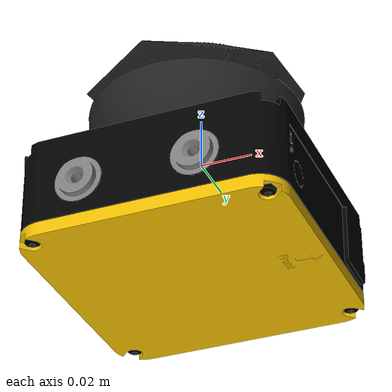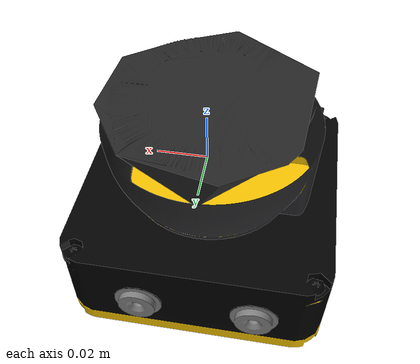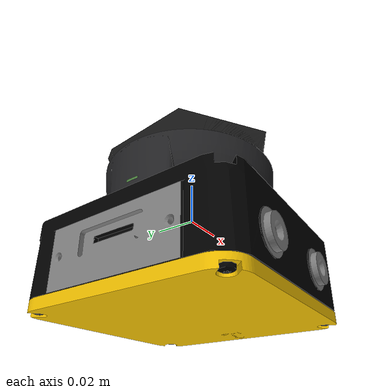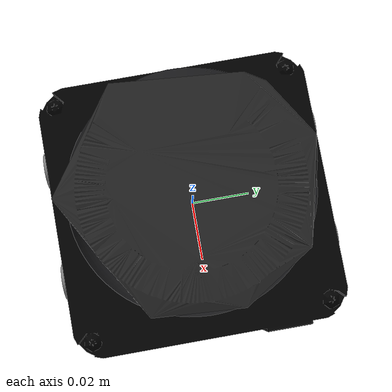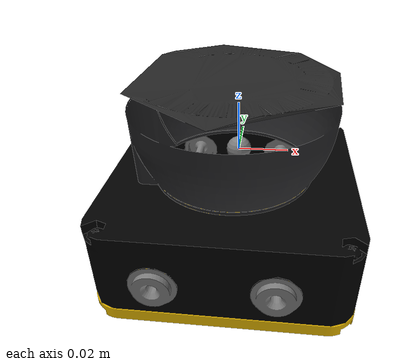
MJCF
<mujoco model="sick_nanoscan3">
  <compiler angle="radian" meshdir="meshes" autolimits="true"/>

  <asset>
    <material name="nanoscan_3__m0_mat" rgba="0 0 0 1"/>
    <material name="nanoscan_3__m1_mat" rgba="0.949 0.7529 0 1"/>
    <material name="nanoscan_3__m2_mat" rgba="0.502 0.502 0.502 1"/>
    <material name="nanoscan_3__m3_mat" rgba="1 1 1 1"/>
    <material name="nanoscan_3__m4_mat" rgba="0.1451 0.1412 0.1529 1"/>
    <material name="nanoscan_3__m5_mat" rgba="0.1412 0.1412 0.149 1"/>
    <material name="nanoscan_3__m6_mat" rgba="0.302 0.5216 0.251 1"/>
    <material name="nanoscan_3__m7_mat" rgba="0.1412 0.1412 0.1412 1"/>
    <material name="nanoscan_3__m8_mat" rgba="1 0.6314 0.6 1"/>
    <mesh name="nanoscan_3__m0" file="nanoscan_3__m0.obj" inertia="shell"/>
    <mesh name="nanoscan_3__m1" file="nanoscan_3__m1.obj" inertia="shell"/>
    <mesh name="nanoscan_3__m2" file="nanoscan_3__m2.obj" inertia="shell"/>
    <mesh name="nanoscan_3__m3" file="nanoscan_3__m3.obj" inertia="shell"/>
    <mesh name="nanoscan_3__m4" file="nanoscan_3__m4.obj" inertia="shell"/>
    <mesh name="nanoscan_3__m5" file="nanoscan_3__m5.obj" inertia="shell"/>
    <mesh name="nanoscan_3__m6" file="nanoscan_3__m6.obj" inertia="shell"/>
    <mesh name="nanoscan_3__m7" file="nanoscan_3__m7.obj" inertia="shell"/>
    <mesh name="nanoscan_3__m8" file="nanoscan_3__m8.obj" inertia="shell"/>
  </asset>

  <worldbody>
    <body name="mount">
      <inertial pos="0 0 0" mass="0.001" diaginertia="0.0001 0.000001 0.0001"/>
      <geom name="sick_nanoscan3_visual_0" type="mesh" mesh="nanoscan_3__m0" material="nanoscan_3__m0_mat" pos="0 0 -0.02" quat="1e-09 0.70710678 0.707106782 1e-09"
            contype="0" conaffinity="0"/>
      <geom name="sick_nanoscan3_visual_1" type="mesh" mesh="nanoscan_3__m1" material="nanoscan_3__m1_mat" pos="0 0 -0.02" quat="1e-09 0.70710678 0.707106782 1e-09"
            contype="0" conaffinity="0"/>
      <geom name="sick_nanoscan3_visual_2" type="mesh" mesh="nanoscan_3__m2" material="nanoscan_3__m2_mat" pos="0 0 -0.02" quat="1e-09 0.70710678 0.707106782 1e-09"
            contype="0" conaffinity="0"/>
      <geom name="sick_nanoscan3_visual_3" type="mesh" mesh="nanoscan_3__m3" material="nanoscan_3__m3_mat" pos="0 0 -0.02" quat="1e-09 0.70710678 0.707106782 1e-09"
            contype="0" conaffinity="0"/>
      <geom name="sick_nanoscan3_visual_4" type="mesh" mesh="nanoscan_3__m4" material="nanoscan_3__m4_mat" pos="0 0 -0.02" quat="1e-09 0.70710678 0.707106782 1e-09"
            contype="0" conaffinity="0"/>
      <geom name="sick_nanoscan3_visual_5" type="mesh" mesh="nanoscan_3__m5" material="nanoscan_3__m5_mat" pos="0 0 -0.02" quat="1e-09 0.70710678 0.707106782 1e-09"
            contype="0" conaffinity="0"/>
      <geom name="sick_nanoscan3_visual_6" type="mesh" mesh="nanoscan_3__m6" material="nanoscan_3__m6_mat" pos="0 0 -0.02" quat="1e-09 0.70710678 0.707106782 1e-09"
            contype="0" conaffinity="0"/>
      <geom name="sick_nanoscan3_visual_7" type="mesh" mesh="nanoscan_3__m7" material="nanoscan_3__m7_mat" pos="0 0 -0.02" quat="1e-09 0.70710678 0.707106782 1e-09"
            contype="0" conaffinity="0"/>
      <geom name="sick_nanoscan3_visual_8" type="mesh" mesh="nanoscan_3__m8" material="nanoscan_3__m8_mat" pos="0 0 -0.02" quat="1e-09 0.70710678 0.707106782 1e-09"
            contype="0" conaffinity="0"/>
      <!-- The vendor collides with the full mesh; this box bounds the converted housing instead. -->
      <geom name="sick_nanoscan3_collision" type="box" pos="-0.0011 0 -0.00885" size="0.0513 0.0534 0.04005" group="3"/>
      <!-- The vendor scan frame (lidar_1_link) is the mount itself.
           Keep in step with the manifest's `frames:` entry. -->
      <site name="scan" pos="0 0 0" size="0.005"/>
    </body>
  </worldbody>
</mujoco>
